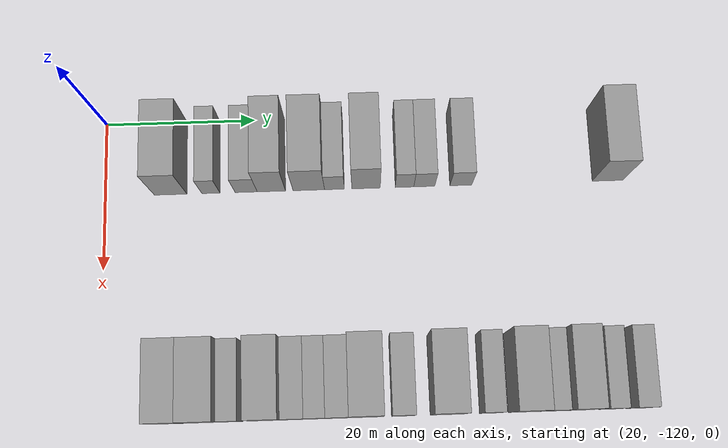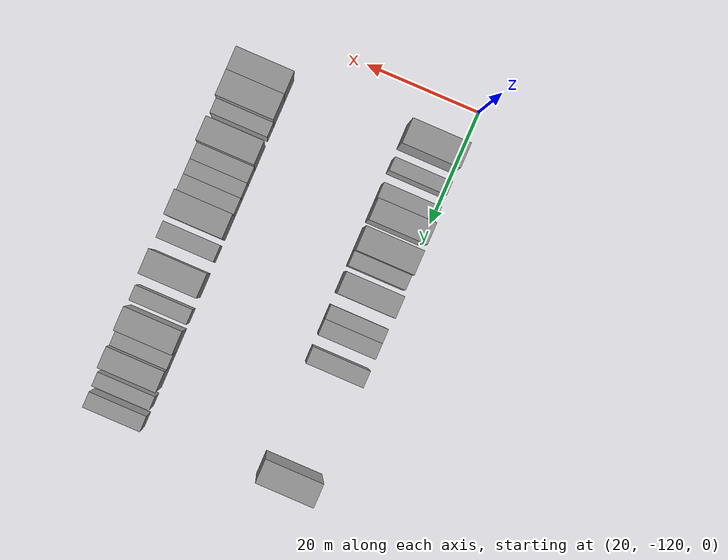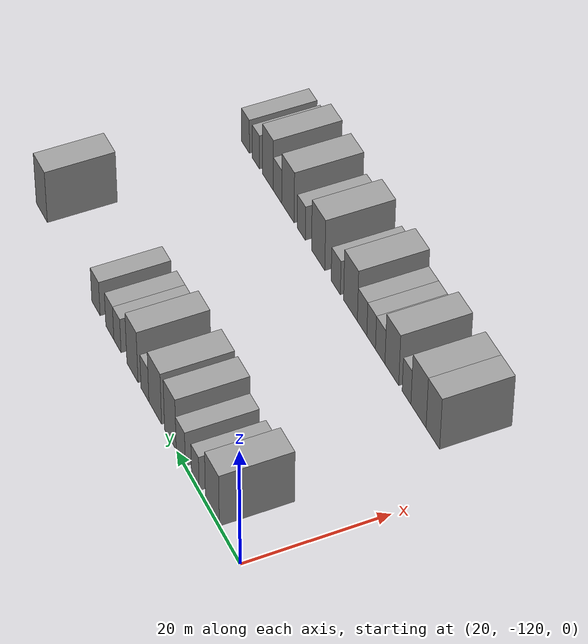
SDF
<sdf version="1.6">
 <world name="default">
  <model name="building_27">
   <static>1</static>
   <pose>25.0000 -111.2873 0 0.000000 0.000000 0.000000</pose>
   <link name="link">
    <pose>0 0 4.50 0 0 0</pose>
    <collision name="collision"><geometry><box><size>10.0000 4.3269 9.0000</size></box></geometry></collision>
    <visual name="visual">
     <cast_shadows>0</cast_shadows>
     <geometry><box><size>10.0000 4.3269 9.0000</size></box></geometry>
     <material>
      <script>
       <uri>model://grey_wall/materials/scripts</uri>
       <uri>model://grey_wall/materials/textures</uri>
       <name>vrc/grey_wall</name>
      </script>
     </material>
    </visual>
   </link>
  </model>
  <model name="building_28">
   <static>1</static>
   <pose>25.0000 -105.9201 0 0.000000 0.000000 0.000000</pose>
   <link name="link">
    <pose>0 0 3.00 0 0 0</pose>
    <collision name="collision"><geometry><box><size>10.0000 2.4074 6.0000</size></box></geometry></collision>
    <visual name="visual">
     <cast_shadows>0</cast_shadows>
     <geometry><box><size>10.0000 2.4074 6.0000</size></box></geometry>
     <material>
      <script>
       <uri>model://grey_wall/materials/scripts</uri>
       <uri>model://grey_wall/materials/textures</uri>
       <name>vrc/grey_wall</name>
      </script>
     </material>
    </visual>
   </link>
  </model>
  <model name="building_29">
   <static>1</static>
   <pose>25.0000 -101.2425 0 0.000000 0.000000 0.000000</pose>
   <link name="link">
    <pose>0 0 3.00 0 0 0</pose>
    <collision name="collision"><geometry><box><size>10.0000 2.9478 6.0000</size></box></geometry></collision>
    <visual name="visual">
     <cast_shadows>0</cast_shadows>
     <geometry><box><size>10.0000 2.9478 6.0000</size></box></geometry>
     <material>
      <script>
       <uri>model://grey_wall/materials/scripts</uri>
       <uri>model://grey_wall/materials/textures</uri>
       <name>vrc/grey_wall</name>
      </script>
     </material>
    </visual>
   </link>
  </model>
  <model name="building_30">
   <static>1</static>
   <pose>25.0000 -97.8844 0 0.000000 0.000000 0.000000</pose>
   <link name="link">
    <pose>0 0 4.50 0 0 0</pose>
    <collision name="collision"><geometry><box><size>10.0000 3.7685 9.0000</size></box></geometry></collision>
    <visual name="visual">
     <cast_shadows>0</cast_shadows>
     <geometry><box><size>10.0000 3.7685 9.0000</size></box></geometry>
     <material>
      <script>
       <uri>model://grey_wall/materials/scripts</uri>
       <uri>model://grey_wall/materials/textures</uri>
       <name>vrc/grey_wall</name>
      </script>
     </material>
    </visual>
   </link>
  </model>
  <model name="building_31">
   <static>1</static>
   <pose>25.0000 -92.9036 0 0.000000 0.000000 0.000000</pose>
   <link name="link">
    <pose>0 0 4.50 0 0 0</pose>
    <collision name="collision"><geometry><box><size>10.0000 4.1931 9.0000</size></box></geometry></collision>
    <visual name="visual">
     <cast_shadows>0</cast_shadows>
     <geometry><box><size>10.0000 4.1931 9.0000</size></box></geometry>
     <material>
      <script>
       <uri>model://grey_wall/materials/scripts</uri>
       <uri>model://grey_wall/materials/textures</uri>
       <name>vrc/grey_wall</name>
      </script>
     </material>
    </visual>
   </link>
  </model>
  <model name="building_32">
   <static>1</static>
   <pose>25.0000 -89.4860 0 0.000000 0.000000 0.000000</pose>
   <link name="link">
    <pose>0 0 3.00 0 0 0</pose>
    <collision name="collision"><geometry><box><size>10.0000 2.6422 6.0000</size></box></geometry></collision>
    <visual name="visual">
     <cast_shadows>0</cast_shadows>
     <geometry><box><size>10.0000 2.6422 6.0000</size></box></geometry>
     <material>
      <script>
       <uri>model://grey_wall/materials/scripts</uri>
       <uri>model://grey_wall/materials/textures</uri>
       <name>vrc/grey_wall</name>
      </script>
     </material>
    </visual>
   </link>
  </model>
  <model name="building_33">
   <static>1</static>
   <pose>25.0000 -85.2763 0 0.000000 0.000000 0.000000</pose>
   <link name="link">
    <pose>0 0 4.50 0 0 0</pose>
    <collision name="collision"><geometry><box><size>10.0000 3.7771 9.0000</size></box></geometry></collision>
    <visual name="visual">
     <cast_shadows>0</cast_shadows>
     <geometry><box><size>10.0000 3.7771 9.0000</size></box></geometry>
     <material>
      <script>
       <uri>model://grey_wall/materials/scripts</uri>
       <uri>model://grey_wall/materials/textures</uri>
       <name>vrc/grey_wall</name>
      </script>
     </material>
    </visual>
   </link>
  </model>
  <model name="building_34">
   <static>1</static>
   <pose>25.0000 -80.1502 0 0.000000 0.000000 0.000000</pose>
   <link name="link">
    <pose>0 0 3.00 0 0 0</pose>
    <collision name="collision"><geometry><box><size>10.0000 2.4752 6.0000</size></box></geometry></collision>
    <visual name="visual">
     <cast_shadows>0</cast_shadows>
     <geometry><box><size>10.0000 2.4752 6.0000</size></box></geometry>
     <material>
      <script>
       <uri>model://grey_wall/materials/scripts</uri>
       <uri>model://grey_wall/materials/textures</uri>
       <name>vrc/grey_wall</name>
      </script>
     </material>
    </visual>
   </link>
  </model>
  <model name="building_35">
   <static>1</static>
   <pose>25.0000 -77.5133 0 0.000000 0.000000 0.000000</pose>
   <link name="link">
    <pose>0 0 3.00 0 0 0</pose>
    <collision name="collision"><geometry><box><size>10.0000 2.7986 6.0000</size></box></geometry></collision>
    <visual name="visual">
     <cast_shadows>0</cast_shadows>
     <geometry><box><size>10.0000 2.7986 6.0000</size></box></geometry>
     <material>
      <script>
       <uri>model://grey_wall/materials/scripts</uri>
       <uri>model://grey_wall/materials/textures</uri>
       <name>vrc/grey_wall</name>
      </script>
     </material>
    </visual>
   </link>
  </model>
  <model name="building_36">
   <static>1</static>
   <pose>25.0000 -72.6482 0 0.000000 0.000000 0.000000</pose>
   <link name="link">
    <pose>0 0 3.00 0 0 0</pose>
    <collision name="collision"><geometry><box><size>10.0000 2.9316 6.0000</size></box></geometry></collision>
    <visual name="visual">
     <cast_shadows>0</cast_shadows>
     <geometry><box><size>10.0000 2.9316 6.0000</size></box></geometry>
     <material>
      <script>
       <uri>model://grey_wall/materials/scripts</uri>
       <uri>model://grey_wall/materials/textures</uri>
       <name>vrc/grey_wall</name>
      </script>
     </material>
    </visual>
   </link>
  </model>
  <model name="building_37">
   <static>1</static>
   <pose>25.0000 -53.0157 0 0.000000 0.000000 0.000000</pose>
   <link name="link">
    <pose>0 0 4.50 0 0 0</pose>
    <collision name="collision"><geometry><box><size>10.0000 4.1112 9.0000</size></box></geometry></collision>
    <visual name="visual">
     <cast_shadows>0</cast_shadows>
     <geometry><box><size>10.0000 4.1112 9.0000</size></box></geometry>
     <material>
      <script>
       <uri>model://grey_wall/materials/scripts</uri>
       <uri>model://grey_wall/materials/textures</uri>
       <name>vrc/grey_wall</name>
      </script>
     </material>
    </visual>
   </link>
  </model>
  <model name="building_137">
   <static>1</static>
   <pose>55.0000 -110.7688 0 0.000000 0.000000 0.000000</pose>
   <link name="link">
    <pose>0 0 4.50 0 0 0</pose>
    <collision name="collision"><geometry><box><size>10.0000 3.9192 9.0000</size></box></geometry></collision>
    <visual name="visual">
     <cast_shadows>0</cast_shadows>
     <geometry><box><size>10.0000 3.9192 9.0000</size></box></geometry>
     <material>
      <script>
       <uri>model://grey_wall/materials/scripts</uri>
       <uri>model://grey_wall/materials/textures</uri>
       <name>vrc/grey_wall</name>
      </script>
     </material>
    </visual>
   </link>
  </model>
  <model name="building_138">
   <static>1</static>
   <pose>55.0000 -106.6049 0 0.000000 0.000000 0.000000</pose>
   <link name="link">
    <pose>0 0 4.50 0 0 0</pose>
    <collision name="collision"><geometry><box><size>10.0000 4.4086 9.0000</size></box></geometry></collision>
    <visual name="visual">
     <cast_shadows>0</cast_shadows>
     <geometry><box><size>10.0000 4.4086 9.0000</size></box></geometry>
     <material>
      <script>
       <uri>model://grey_wall/materials/scripts</uri>
       <uri>model://grey_wall/materials/textures</uri>
       <name>vrc/grey_wall</name>
      </script>
     </material>
    </visual>
   </link>
  </model>
  <model name="building_139">
   <static>1</static>
   <pose>55.0000 -103.1118 0 0.000000 0.000000 0.000000</pose>
   <link name="link">
    <pose>0 0 3.00 0 0 0</pose>
    <collision name="collision"><geometry><box><size>10.0000 2.5775 6.0000</size></box></geometry></collision>
    <visual name="visual">
     <cast_shadows>0</cast_shadows>
     <geometry><box><size>10.0000 2.5775 6.0000</size></box></geometry>
     <material>
      <script>
       <uri>model://grey_wall/materials/scripts</uri>
       <uri>model://grey_wall/materials/textures</uri>
       <name>vrc/grey_wall</name>
      </script>
     </material>
    </visual>
   </link>
  </model>
  <model name="building_140">
   <static>1</static>
   <pose>55.0000 -98.7578 0 0.000000 0.000000 0.000000</pose>
   <link name="link">
    <pose>0 0 4.50 0 0 0</pose>
    <collision name="collision"><geometry><box><size>10.0000 4.1305 9.0000</size></box></geometry></collision>
    <visual name="visual">
     <cast_shadows>0</cast_shadows>
     <geometry><box><size>10.0000 4.1305 9.0000</size></box></geometry>
     <material>
      <script>
       <uri>model://grey_wall/materials/scripts</uri>
       <uri>model://grey_wall/materials/textures</uri>
       <name>vrc/grey_wall</name>
      </script>
     </material>
    </visual>
   </link>
  </model>
  <model name="building_141">
   <static>1</static>
   <pose>55.0000 -95.2647 0 0.000000 0.000000 0.000000</pose>
   <link name="link">
    <pose>0 0 3.00 0 0 0</pose>
    <collision name="collision"><geometry><box><size>10.0000 2.8557 6.0000</size></box></geometry></collision>
    <visual name="visual">
     <cast_shadows>0</cast_shadows>
     <geometry><box><size>10.0000 2.8557 6.0000</size></box></geometry>
     <material>
      <script>
       <uri>model://grey_wall/materials/scripts</uri>
       <uri>model://grey_wall/materials/textures</uri>
       <name>vrc/grey_wall</name>
      </script>
     </material>
    </visual>
   </link>
  </model>
  <model name="building_142">
   <static>1</static>
   <pose>55.0000 -92.5234 0 0.000000 0.000000 0.000000</pose>
   <link name="link">
    <pose>0 0 3.00 0 0 0</pose>
    <collision name="collision"><geometry><box><size>10.0000 2.6271 6.0000</size></box></geometry></collision>
    <visual name="visual">
     <cast_shadows>0</cast_shadows>
     <geometry><box><size>10.0000 2.6271 6.0000</size></box></geometry>
     <material>
      <script>
       <uri>model://grey_wall/materials/scripts</uri>
       <uri>model://grey_wall/materials/textures</uri>
       <name>vrc/grey_wall</name>
      </script>
     </material>
    </visual>
   </link>
  </model>
  <model name="building_143">
   <static>1</static>
   <pose>55.0000 -89.7575 0 0.000000 0.000000 0.000000</pose>
   <link name="link">
    <pose>0 0 3.00 0 0 0</pose>
    <collision name="collision"><geometry><box><size>10.0000 2.9045 6.0000</size></box></geometry></collision>
    <visual name="visual">
     <cast_shadows>0</cast_shadows>
     <geometry><box><size>10.0000 2.9045 6.0000</size></box></geometry>
     <material>
      <script>
       <uri>model://grey_wall/materials/scripts</uri>
       <uri>model://grey_wall/materials/textures</uri>
       <name>vrc/grey_wall</name>
      </script>
     </material>
    </visual>
   </link>
  </model>
  <model name="building_144">
   <static>1</static>
   <pose>55.0000 -86.1651 0 0.000000 0.000000 0.000000</pose>
   <link name="link">
    <pose>0 0 4.50 0 0 0</pose>
    <collision name="collision"><geometry><box><size>10.0000 4.2803 9.0000</size></box></geometry></collision>
    <visual name="visual">
     <cast_shadows>0</cast_shadows>
     <geometry><box><size>10.0000 4.2803 9.0000</size></box></geometry>
     <material>
      <script>
       <uri>model://grey_wall/materials/scripts</uri>
       <uri>model://grey_wall/materials/textures</uri>
       <name>vrc/grey_wall</name>
      </script>
     </material>
    </visual>
   </link>
  </model>
  <model name="building_145">
   <static>1</static>
   <pose>55.0000 -81.5735 0 0.000000 0.000000 0.000000</pose>
   <link name="link">
    <pose>0 0 3.00 0 0 0</pose>
    <collision name="collision"><geometry><box><size>10.0000 2.9029 6.0000</size></box></geometry></collision>
    <visual name="visual">
     <cast_shadows>0</cast_shadows>
     <geometry><box><size>10.0000 2.9029 6.0000</size></box></geometry>
     <material>
      <script>
       <uri>model://grey_wall/materials/scripts</uri>
       <uri>model://grey_wall/materials/textures</uri>
       <name>vrc/grey_wall</name>
      </script>
     </material>
    </visual>
   </link>
  </model>
  <model name="building_146">
   <static>1</static>
   <pose>55.0000 -75.9907 0 0.000000 0.000000 0.000000</pose>
   <link name="link">
    <pose>0 0 4.50 0 0 0</pose>
    <collision name="collision"><geometry><box><size>10.0000 4.2626 9.0000</size></box></geometry></collision>
    <visual name="visual">
     <cast_shadows>0</cast_shadows>
     <geometry><box><size>10.0000 4.2626 9.0000</size></box></geometry>
     <material>
      <script>
       <uri>model://grey_wall/materials/scripts</uri>
       <uri>model://grey_wall/materials/textures</uri>
       <name>vrc/grey_wall</name>
      </script>
     </material>
    </visual>
   </link>
  </model>
  <model name="building_147">
   <static>1</static>
   <pose>55.0000 -70.5424 0 0.000000 0.000000 0.000000</pose>
   <link name="link">
    <pose>0 0 3.00 0 0 0</pose>
    <collision name="collision"><geometry><box><size>10.0000 2.6340 6.0000</size></box></geometry></collision>
    <visual name="visual">
     <cast_shadows>0</cast_shadows>
     <geometry><box><size>10.0000 2.6340 6.0000</size></box></geometry>
     <material>
      <script>
       <uri>model://grey_wall/materials/scripts</uri>
       <uri>model://grey_wall/materials/textures</uri>
       <name>vrc/grey_wall</name>
      </script>
     </material>
    </visual>
   </link>
  </model>
  <model name="building_148">
   <static>1</static>
   <pose>55.0000 -66.1726 0 0.000000 0.000000 0.000000</pose>
   <link name="link">
    <pose>0 0 4.50 0 0 0</pose>
    <collision name="collision"><geometry><box><size>10.0000 4.1058 9.0000</size></box></geometry></collision>
    <visual name="visual">
     <cast_shadows>0</cast_shadows>
     <geometry><box><size>10.0000 4.1058 9.0000</size></box></geometry>
     <material>
      <script>
       <uri>model://grey_wall/materials/scripts</uri>
       <uri>model://grey_wall/materials/textures</uri>
       <name>vrc/grey_wall</name>
      </script>
     </material>
    </visual>
   </link>
  </model>
  <model name="building_149">
   <static>1</static>
   <pose>55.0000 -62.7372 0 0.000000 0.000000 0.000000</pose>
   <link name="link">
    <pose>0 0 3.00 0 0 0</pose>
    <collision name="collision"><geometry><box><size>10.0000 2.7651 6.0000</size></box></geometry></collision>
    <visual name="visual">
     <cast_shadows>0</cast_shadows>
     <geometry><box><size>10.0000 2.7651 6.0000</size></box></geometry>
     <material>
      <script>
       <uri>model://grey_wall/materials/scripts</uri>
       <uri>model://grey_wall/materials/textures</uri>
       <name>vrc/grey_wall</name>
      </script>
     </material>
    </visual>
   </link>
  </model>
  <model name="building_150">
   <static>1</static>
   <pose>55.0000 -59.5318 0 0.000000 0.000000 0.000000</pose>
   <link name="link">
    <pose>0 0 4.50 0 0 0</pose>
    <collision name="collision"><geometry><box><size>10.0000 3.6457 9.0000</size></box></geometry></collision>
    <visual name="visual">
     <cast_shadows>0</cast_shadows>
     <geometry><box><size>10.0000 3.6457 9.0000</size></box></geometry>
     <material>
      <script>
       <uri>model://grey_wall/materials/scripts</uri>
       <uri>model://grey_wall/materials/textures</uri>
       <name>vrc/grey_wall</name>
      </script>
     </material>
    </visual>
   </link>
  </model>
  <model name="building_151">
   <static>1</static>
   <pose>55.0000 -55.4916 0 0.000000 0.000000 0.000000</pose>
   <link name="link">
    <pose>0 0 3.00 0 0 0</pose>
    <collision name="collision"><geometry><box><size>10.0000 2.4347 6.0000</size></box></geometry></collision>
    <visual name="visual">
     <cast_shadows>0</cast_shadows>
     <geometry><box><size>10.0000 2.4347 6.0000</size></box></geometry>
     <material>
      <script>
       <uri>model://grey_wall/materials/scripts</uri>
       <uri>model://grey_wall/materials/textures</uri>
       <name>vrc/grey_wall</name>
      </script>
     </material>
    </visual>
   </link>
  </model>
  <model name="building_152">
   <static>1</static>
   <pose>55.0000 -51.9256 0 0.000000 0.000000 0.000000</pose>
   <link name="link">
    <pose>0 0 3.00 0 0 0</pose>
    <collision name="collision"><geometry><box><size>10.0000 2.6974 6.0000</size></box></geometry></collision>
    <visual name="visual">
     <cast_shadows>0</cast_shadows>
     <geometry><box><size>10.0000 2.6974 6.0000</size></box></geometry>
     <material>
      <script>
       <uri>model://grey_wall/materials/scripts</uri>
       <uri>model://grey_wall/materials/textures</uri>
       <name>vrc/grey_wall</name>
      </script>
     </material>
    </visual>
   </link>
  </model>
 </world>
</sdf>
